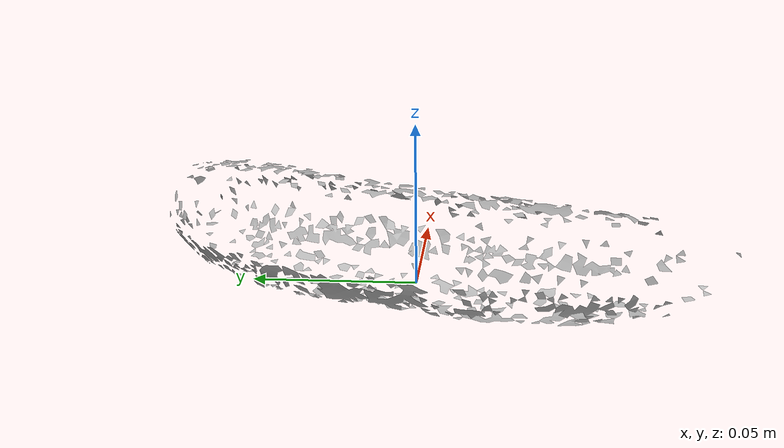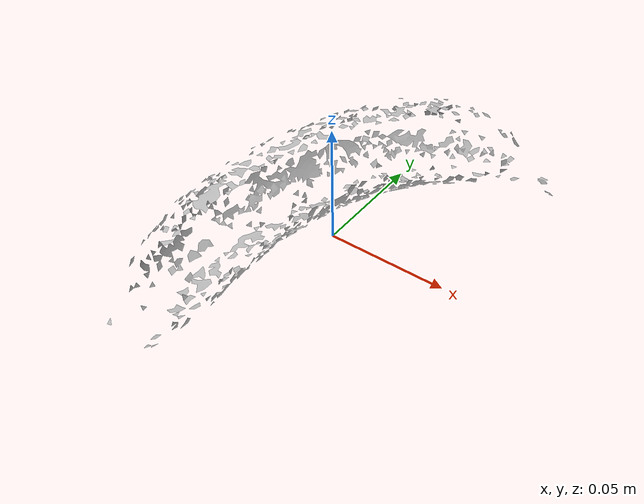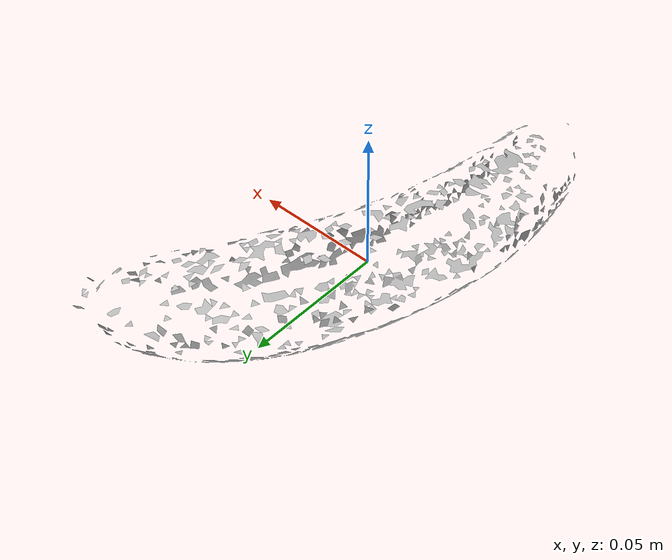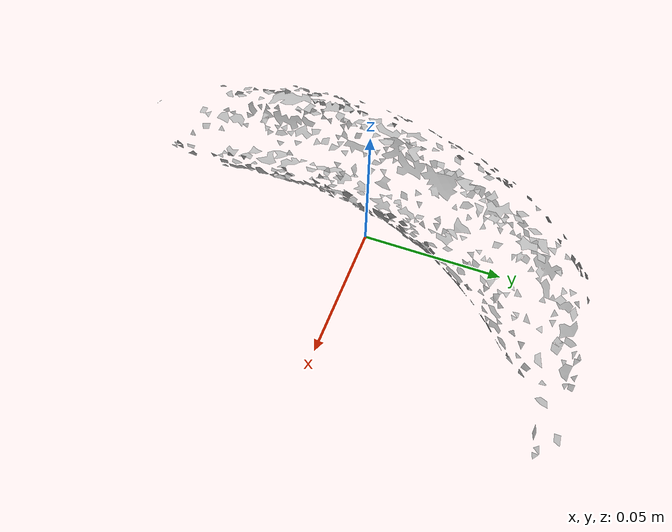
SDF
<?xml version="1.0" ?>
<sdf version="1.4">
  <model name='ycb_011_banana'>
    <link name='body'>
      <inertial>
        <mass>0.066</mass>
        <pose>-0.00993610246452 0.00407267911172 0.0171268891715 0 0 0</pose>
        <inertia>
          <ixx>0.000144177765139</ixx>
          <ixy>-4.26007879811e-05</ixy>
          <ixz>1.02036376212e-06</ixz>
          <iyy>2.98060237306e-05</iyy>
          <iyz>-8.54340088435e-07</iyz>
          <izz>0.000164118296691</izz>
        </inertia>
      </inertial>
      <visual name='ycb_011_banana_visual'>
        <pose>0 0 0 0 0 0</pose>
        <geometry>
          <mesh>
            <uri>model://ycb_011_banana/meshes/textured.dae</uri>
          </mesh>
        </geometry>
      </visual>
      <collision name='ycb_011_banana_collision'>
        <pose>0 0 0 0 0 0</pose>
        <geometry>
          <mesh>
            <uri>model://ycb_011_banana/meshes/nontextured.stl</uri>
          </mesh>
        </geometry>
        <max_contacts>10</max_contacts>
      </collision>
    </link>
  </model>
</sdf>
